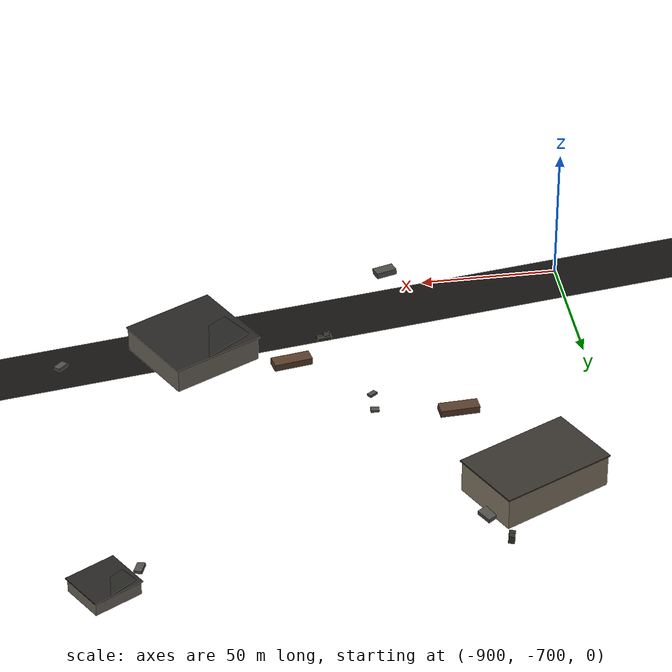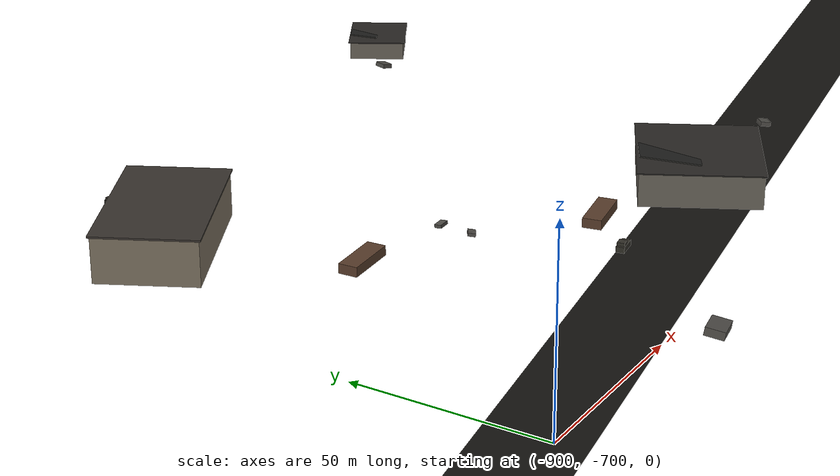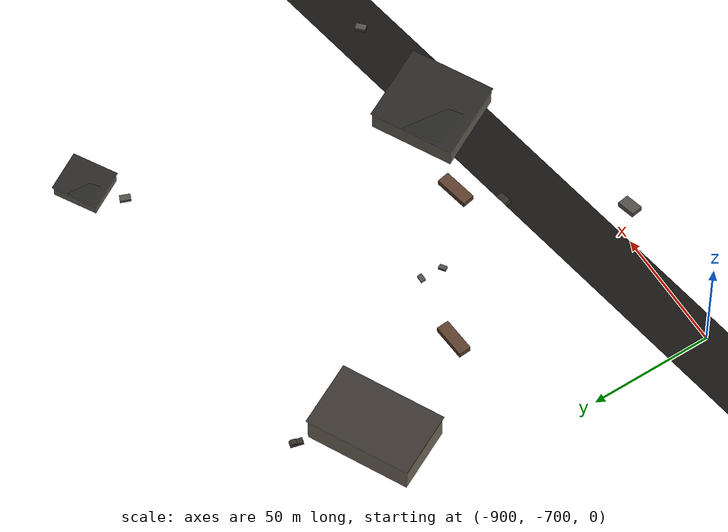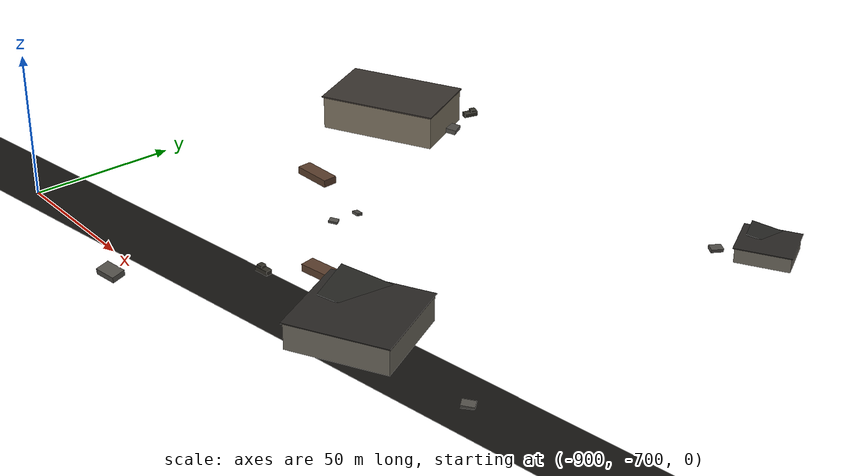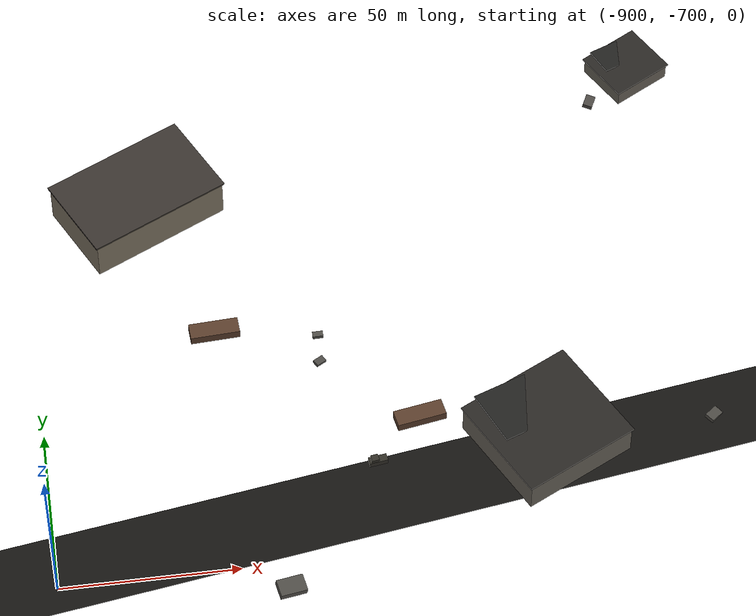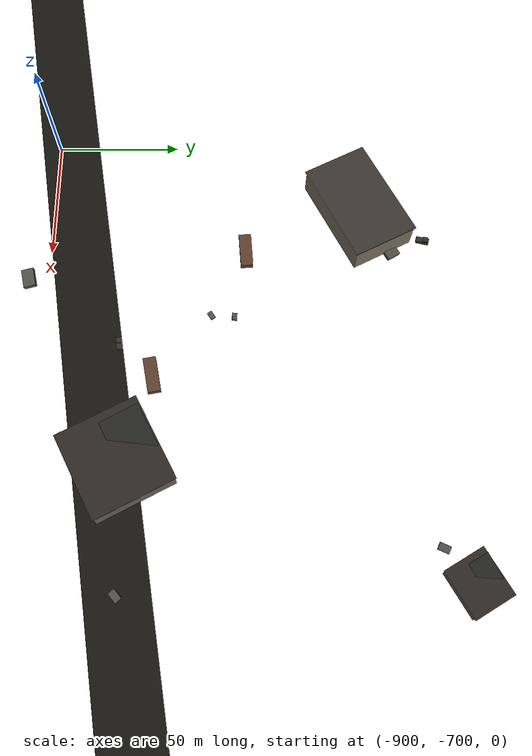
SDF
<sdf version="1.9">
 <world name="uav_5km_world">
  <model name="primary_paved_road_02">
   <static>true</static>
   <pose>-770.00 -675.00 0.04 0 0 0.1572</pose>
   <link name="link">
    <visual name="visual">
     <geometry><box><size>830.24 24.00 0.06</size></box></geometry>
     <material>
      <ambient>0.08 0.075 0.065 1</ambient>
      <diffuse>0.08 0.075 0.065 1</diffuse>
      <specular>0.08 0.08 0.08 1</specular>
     </material>
    </visual>
   </link>
  </model>
  <model name="damaged_abandoned_building_08">
   <static>true</static>
   <pose>-762.1 -668.3 4.5 0 0 0.477</pose>
   <link name="link">
    <collision name="collision"><geometry><box><size>34.0 32.0 9.0</size></box></geometry></collision>
    <visual name="visual">
     <geometry><box><size>34.0 32.0 9.0</size></box></geometry>
     <material>
      <ambient>0.42 0.40 0.36 1</ambient>
      <diffuse>0.42 0.40 0.36 1</diffuse>
      <specular>0.08 0.08 0.08 1</specular>
     </material>
    </visual>
   </link>
  </model>
  <model name="damaged_abandoned_building_08_roof">
   <static>true</static>
   <pose>-762.1 -668.3 9.2 0 0 0.477</pose>
   <link name="link">
    <visual name="visual">
     <geometry><box><size>35.0 33.0 0.3</size></box></geometry>
     <material>
      <ambient>0.16 0.15 0.14 1</ambient>
      <diffuse>0.16 0.15 0.14 1</diffuse>
      <specular>0.08 0.08 0.08 1</specular>
     </material>
    </visual>
   </link>
  </model>
  <model name="damaged_abandoned_building_08_collapsed_wall">
   <static>true</static>
   <pose>-751.2 -676.3 1.0 0 0 0.777</pose>
   <link name="link">
    <visual name="visual">
     <geometry><box><size>18.7 1.0 2.0</size></box></geometry>
     <material>
      <ambient>0.36 0.34 0.31 1</ambient>
      <diffuse>0.36 0.34 0.31 1</diffuse>
      <specular>0.08 0.08 0.08 1</specular>
     </material>
    </visual>
   </link>
  </model>
  <model name="damaged_abandoned_building_08_broken_roof">
   <static>true</static>
   <pose>-768.2 -662.6 9.4 0.12 0.18 0.477</pose>
   <link name="link">
    <visual name="visual">
     <geometry><box><size>22.1 16.0 0.35</size></box></geometry>
     <material>
      <ambient>0.14 0.14 0.13 1</ambient>
      <diffuse>0.14 0.14 0.13 1</diffuse>
      <specular>0.08 0.08 0.08 1</specular>
     </material>
    </visual>
   </link>
  </model>
  <model name="damaged_abandoned_building_13">
   <static>true</static>
   <pose>-717.9 -540.3 2.5 0 0 0.516</pose>
   <link name="link">
    <collision name="collision"><geometry><box><size>18.0 16.0 5.0</size></box></geometry></collision>
    <visual name="visual">
     <geometry><box><size>18.0 16.0 5.0</size></box></geometry>
     <material>
      <ambient>0.42 0.40 0.36 1</ambient>
      <diffuse>0.42 0.40 0.36 1</diffuse>
      <specular>0.08 0.08 0.08 1</specular>
     </material>
    </visual>
   </link>
  </model>
  <model name="damaged_abandoned_building_13_roof">
   <static>true</static>
   <pose>-717.9 -540.3 5.2 0 0 0.516</pose>
   <link name="link">
    <visual name="visual">
     <geometry><box><size>19.0 17.0 0.3</size></box></geometry>
     <material>
      <ambient>0.16 0.15 0.14 1</ambient>
      <diffuse>0.16 0.15 0.14 1</diffuse>
      <specular>0.08 0.08 0.08 1</specular>
     </material>
    </visual>
   </link>
  </model>
  <model name="damaged_abandoned_building_13_broken_roof">
   <static>true</static>
   <pose>-721.1 -537.4 5.5 0.12 0.18 0.516</pose>
   <link name="link">
    <visual name="visual">
     <geometry><box><size>11.7 8.0 0.35</size></box></geometry>
     <material>
      <ambient>0.14 0.14 0.13 1</ambient>
      <diffuse>0.14 0.14 0.13 1</diffuse>
      <specular>0.08 0.08 0.08 1</specular>
     </material>
    </visual>
   </link>
  </model>
  <model name="damaged_abandoned_building_18">
   <static>true</static>
   <pose>-866.9 -574.2 6.0 0 0 0.464</pose>
   <link name="link">
    <collision name="collision"><geometry><box><size>42.0 26.0 12.0</size></box></geometry></collision>
    <visual name="visual">
     <geometry><box><size>42.0 26.0 12.0</size></box></geometry>
     <material>
      <ambient>0.50 0.46 0.39 1</ambient>
      <diffuse>0.50 0.46 0.39 1</diffuse>
      <specular>0.08 0.08 0.08 1</specular>
     </material>
    </visual>
   </link>
  </model>
  <model name="damaged_abandoned_building_18_roof">
   <static>true</static>
   <pose>-866.9 -574.2 12.2 0 0 0.464</pose>
   <link name="link">
    <visual name="visual">
     <geometry><box><size>43.0 27.0 0.5</size></box></geometry>
     <material>
      <ambient>0.22 0.20 0.18 1</ambient>
      <diffuse>0.22 0.20 0.18 1</diffuse>
      <specular>0.08 0.08 0.08 1</specular>
     </material>
    </visual>
   </link>
  </model>
  <model name="damaged_zone_rubble_pile_02">
   <static>true</static>
   <pose>-730.4 -550.3 0.60 0.14 0.07 1.152</pose>
   <link name="link">
    <visual name="visual">
     <geometry><box><size>4.3 2.8 1.2</size></box></geometry>
     <material>
      <ambient>0.31 0.30 0.28 1</ambient>
      <diffuse>0.31 0.30 0.28 1</diffuse>
      <specular>0.08 0.08 0.08 1</specular>
     </material>
    </visual>
   </link>
  </model>
  <model name="damaged_zone_rubble_pile_04">
   <static>true</static>
   <pose>-859.2 -580.7 0.58 0.14 0.07 0.070</pose>
   <link name="link">
    <visual name="visual">
     <geometry><box><size>4.1 2.7 1.2</size></box></geometry>
     <material>
      <ambient>0.31 0.30 0.28 1</ambient>
      <diffuse>0.31 0.30 0.28 1</diffuse>
      <specular>0.08 0.08 0.08 1</specular>
     </material>
    </visual>
   </link>
  </model>
  <model name="damaged_zone_rubble_pile_08">
   <static>true</static>
   <pose>-821.2 -634.3 0.44 0.14 0.07 0.571</pose>
   <link name="link">
    <visual name="visual">
     <geometry><box><size>3.1 2.0 0.9</size></box></geometry>
     <material>
      <ambient>0.31 0.30 0.28 1</ambient>
      <diffuse>0.31 0.30 0.28 1</diffuse>
      <specular>0.08 0.08 0.08 1</specular>
     </material>
    </visual>
   </link>
  </model>
  <model name="damaged_zone_rubble_pile_20">
   <static>true</static>
   <pose>-820.6 -625.1 0.43 0.14 0.07 3.117</pose>
   <link name="link">
    <visual name="visual">
     <geometry><box><size>3.0 2.0 0.9</size></box></geometry>
     <material>
      <ambient>0.31 0.30 0.28 1</ambient>
      <diffuse>0.31 0.30 0.28 1</diffuse>
      <specular>0.08 0.08 0.08 1</specular>
     </material>
    </visual>
   </link>
  </model>
  <model name="damaged_zone_rubble_pile_23">
   <static>true</static>
   <pose>-714.7 -666.8 0.59 0.14 0.07 0.700</pose>
   <link name="link">
    <visual name="visual">
     <geometry><box><size>4.2 2.8 1.2</size></box></geometry>
     <material>
      <ambient>0.31 0.30 0.28 1</ambient>
      <diffuse>0.31 0.30 0.28 1</diffuse>
      <specular>0.08 0.08 0.08 1</specular>
     </material>
    </visual>
   </link>
  </model>
  <model name="damaged_zone_rubble_pile_24">
   <static>true</static>
   <pose>-848.4 -560.9 0.80 0.14 0.07 2.116</pose>
   <link name="link">
    <visual name="visual">
     <geometry><box><size>5.7 3.8 1.6</size></box></geometry>
     <material>
      <ambient>0.31 0.30 0.28 1</ambient>
      <diffuse>0.31 0.30 0.28 1</diffuse>
      <specular>0.08 0.08 0.08 1</specular>
     </material>
    </visual>
   </link>
  </model>
  <model name="damaged_zone_rubble_pile_25">
   <static>true</static>
   <pose>-759.9 -665.1 0.34 0.14 0.07 1.157</pose>
   <link name="link">
    <visual name="visual">
     <geometry><box><size>2.4 1.6 0.7</size></box></geometry>
     <material>
      <ambient>0.31 0.30 0.28 1</ambient>
      <diffuse>0.31 0.30 0.28 1</diffuse>
      <specular>0.08 0.08 0.08 1</specular>
     </material>
    </visual>
   </link>
  </model>
  <model name="damaged_zone_rubble_pile_34">
   <static>true</static>
   <pose>-837.7 -708.1 1.05 0.14 0.07 0.208</pose>
   <link name="link">
    <visual name="visual">
     <geometry><box><size>7.5 4.9 2.1</size></box></geometry>
     <material>
      <ambient>0.31 0.30 0.28 1</ambient>
      <diffuse>0.31 0.30 0.28 1</diffuse>
      <specular>0.08 0.08 0.08 1</specular>
     </material>
    </visual>
   </link>
  </model>
  <model name="damaged_zone_abandoned_vehicle_03">
   <static>true</static>
   <pose>-809.3 -670.2 0.8 0 0 -2.992</pose>
   <link name="link">
    <collision name="collision"><geometry><box><size>5.2 2.2 1.6</size></box></geometry></collision>
    <visual name="visual">
     <geometry><box><size>5.2 2.2 1.6</size></box></geometry>
     <material>
      <ambient>0.19 0.18 0.15 1</ambient>
      <diffuse>0.19 0.18 0.15 1</diffuse>
      <specular>0.08 0.08 0.08 1</specular>
     </material>
    </visual>
   </link>
  </model>
  <model name="damaged_zone_abandoned_vehicle_03_cab">
   <static>true</static>
   <pose>-810.2 -670.3 1.9 0 0 -2.992</pose>
   <link name="link">
    <visual name="visual">
     <geometry><box><size>2.1 2.0 1.1</size></box></geometry>
     <material>
      <ambient>0.19 0.18 0.15 1</ambient>
      <diffuse>0.19 0.18 0.15 1</diffuse>
      <specular>0.08 0.08 0.08 1</specular>
     </material>
    </visual>
   </link>
  </model>
  <model name="damaged_zone_abandoned_vehicle_04">
   <static>true</static>
   <pose>-854.1 -547.9 0.8 0 0 1.327</pose>
   <link name="link">
    <collision name="collision"><geometry><box><size>5.2 2.2 1.6</size></box></geometry></collision>
    <visual name="visual">
     <geometry><box><size>5.2 2.2 1.6</size></box></geometry>
     <material>
      <ambient>0.19 0.18 0.15 1</ambient>
      <diffuse>0.19 0.18 0.15 1</diffuse>
      <specular>0.08 0.08 0.08 1</specular>
     </material>
    </visual>
   </link>
  </model>
  <model name="damaged_zone_abandoned_vehicle_04_cab">
   <static>true</static>
   <pose>-853.9 -546.9 1.9 0 0 1.327</pose>
   <link name="link">
    <visual name="visual">
     <geometry><box><size>2.1 2.0 1.1</size></box></geometry>
     <material>
      <ambient>0.19 0.18 0.15 1</ambient>
      <diffuse>0.19 0.18 0.15 1</diffuse>
      <specular>0.08 0.08 0.08 1</specular>
     </material>
    </visual>
   </link>
  </model>
  <model name="damaged_zone_storage_container_03">
   <static>true</static>
   <pose>-795.9 -656.9 1.3 0 0 0.18</pose>
   <link name="link">
    <collision name="collision"><geometry><box><size>14 5 2.6</size></box></geometry></collision>
    <visual name="visual">
     <geometry><box><size>14 5 2.6</size></box></geometry>
     <material>
      <ambient>0.35 0.24 0.17 1</ambient>
      <diffuse>0.35 0.24 0.17 1</diffuse>
      <specular>0.08 0.08 0.08 1</specular>
     </material>
    </visual>
   </link>
  </model>
  <model name="damaged_zone_storage_container_05">
   <static>true</static>
   <pose>-849.5 -620.5 1.3 0 0 0.06</pose>
   <link name="link">
    <collision name="collision"><geometry><box><size>14 5 2.6</size></box></geometry></collision>
    <visual name="visual">
     <geometry><box><size>14 5 2.6</size></box></geometry>
     <material>
      <ambient>0.35 0.24 0.17 1</ambient>
      <diffuse>0.35 0.24 0.17 1</diffuse>
      <specular>0.08 0.08 0.08 1</specular>
     </material>
    </visual>
   </link>
  </model>
 </world>
</sdf>
